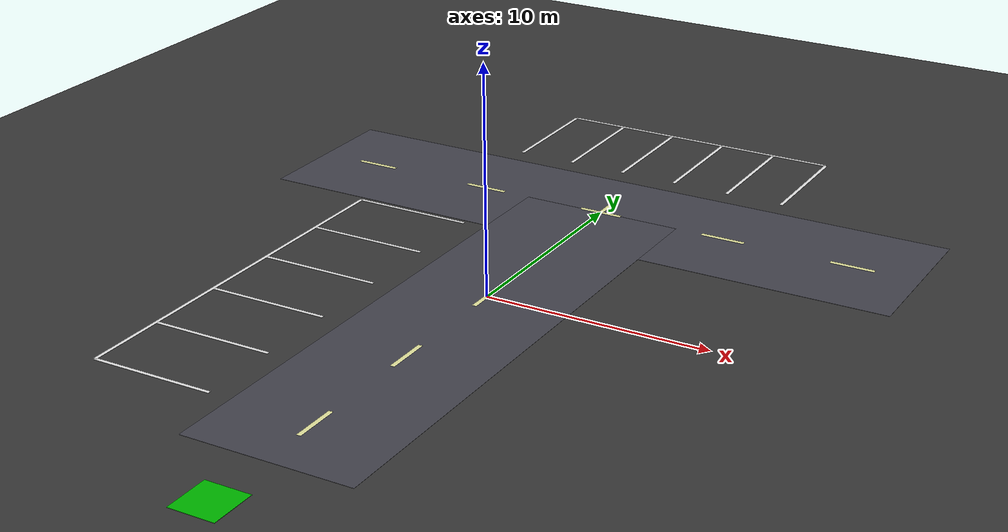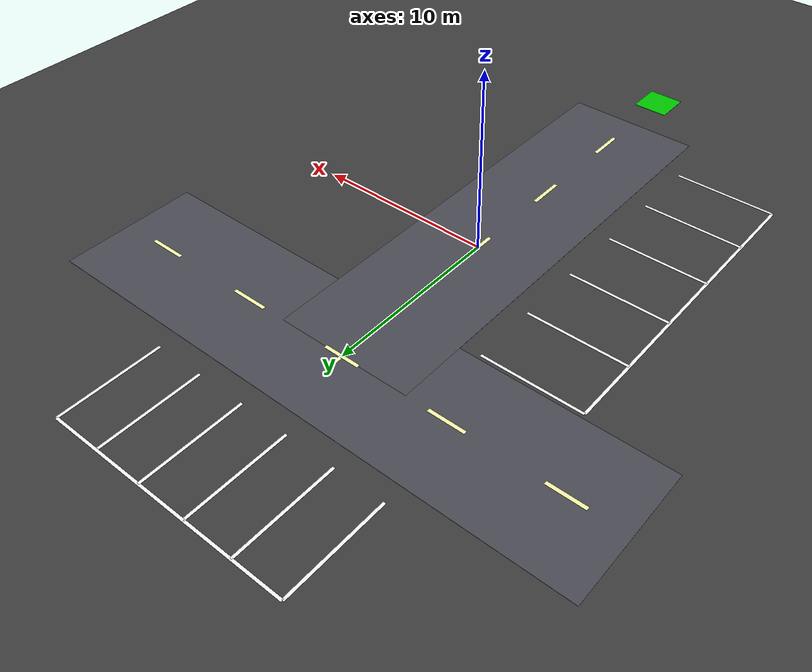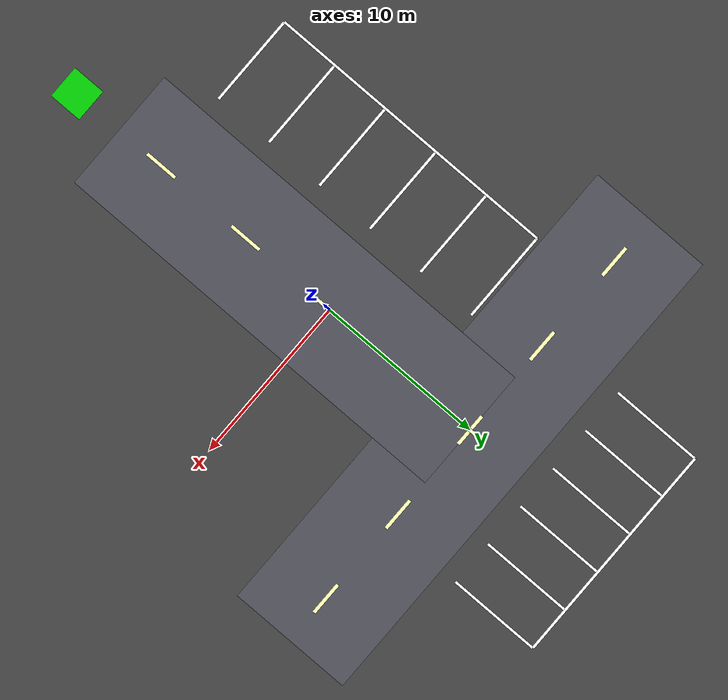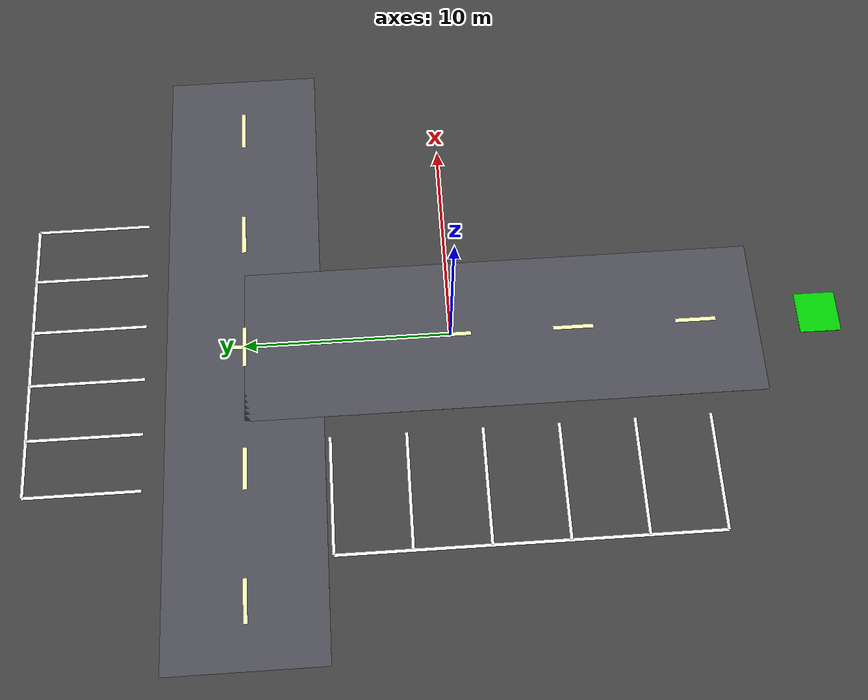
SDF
<?xml version="1.0" ?>
<sdf version="1.6">
  <world name="parking_lot_b">

    <!-- Sun / lighting -->
    <include>
      <uri>model://sun</uri>
    </include>

    <!-- Physics -->
    <physics type="ode">
      <real_time_update_rate>1000</real_time_update_rate>
      <max_step_size>0.001</max_step_size>
    </physics>

    <!-- Ground (asphalt) -->
    <model name="ground_plane">
      <static>true</static>
      <link name="link">
        <collision name="collision">
          <geometry>
            <plane>
              <normal>0 0 1</normal>
              <size>50 50</size>
            </plane>
          </geometry>
        </collision>
        <visual name="visual">
          <geometry>
            <plane>
              <normal>0 0 1</normal>
              <size>50 50</size>
            </plane>
          </geometry>
          <material>
            <ambient>0.25 0.25 0.25 1</ambient>
            <diffuse>0.25 0.25 0.25 1</diffuse>
          </material>
        </visual>
      </link>
    </model>

    <!-- Entrance marker (green square) near bottom of vertical road -->
    <model name="entrance_marker">
      <static>true</static>
      <link name="link">
        <visual name="entrance_visual">
          <pose>0 -18 0 0 0 0</pose>
          <geometry>
            <box><size>2 2 0.02</size></box>
          </geometry>
          <material>
            <diffuse>0 0.8 0 1</diffuse>
          </material>
        </visual>
      </link>
    </model>

    <!-- Vertical road (north–south) -->
    <model name="vertical_road">
      <static>true</static>
      <link name="link">
        <visual name="surface">
          <!-- Length 25 m (y), width 7.5 m (x) -->
          <pose>0 -2.5 0.001 0 0 0</pose>
          <geometry>
            <box><size>7.5 25 0.01</size></box>
          </geometry>
          <material>
            <ambient>0.20 0.20 0.22 1</ambient>
            <diffuse>0.30 0.30 0.34 1</diffuse>
          </material>
        </visual>

        <!-- Center dashed line on vertical road -->
        <visual name="v_dash1">
          <pose>0 -12 0.002 0 0 0</pose>
          <geometry><box><size>0.2 2 0.01</size></box></geometry>
          <material><diffuse>1 1 0.7 1</diffuse></material>
        </visual>
        <visual name="v_dash2">
          <pose>0 -6 0.002 0 0 0</pose>
          <geometry><box><size>0.2 2 0.01</size></box></geometry>
          <material><diffuse>1 1 0.7 1</diffuse></material>
        </visual>
        <visual name="v_dash3">
          <pose>0 0 0.002 0 0 0</pose>
          <geometry><box><size>0.2 2 0.01</size></box></geometry>
          <material><diffuse>1 1 0.7 1</diffuse></material>
        </visual>
        <visual name="v_dash4">
          <pose>0 6 0.002 0 0 0</pose>
          <geometry><box><size>0.2 2 0.01</size></box></geometry>
          <material><diffuse>1 1 0.7 1</diffuse></material>
        </visual>
        <visual name="v_dash5">
          <pose>0 10 0.002 0 0 0</pose>
          <geometry><box><size>0.2 2 0.01</size></box></geometry>
          <material><diffuse>1 1 0.7 1</diffuse></material>
        </visual>
      </link>
    </model>

    <!-- Horizontal road (east–west) at the top of the vertical road -->
    <model name="horizontal_road">
      <static>true</static>
      <link name="link">
        <visual name="surface">
          <!-- Length 30 m (x), width 7.5 m (y) -->
          <pose>0 10 0.001 0 0 0</pose>
          <geometry>
            <box><size>30 7.5 0.01</size></box>
          </geometry>
          <material>
            <ambient>0.20 0.20 0.22 1</ambient>
            <diffuse>0.30 0.30 0.34 1</diffuse>
          </material>
        </visual>

        <!-- Center dashed line on horizontal road -->
        <visual name="h_dash1">
          <pose>-12 10 0.002 0 0 0</pose>
          <geometry><box><size>2 0.2 0.01</size></box></geometry>
          <material><diffuse>1 1 0.7 1</diffuse></material>
        </visual>
        <visual name="h_dash2">
          <pose>-6 10 0.002 0 0 0</pose>
          <geometry><box><size>2 0.2 0.01</size></box></geometry>
          <material><diffuse>1 1 0.7 1</diffuse></material>
        </visual>
        <visual name="h_dash3">
          <pose>0 10 0.002 0 0 0</pose>
          <geometry><box><size>2 0.2 0.01</size></box></geometry>
          <material><diffuse>1 1 0.7 1</diffuse></material>
        </visual>
        <visual name="h_dash4">
          <pose>6 10 0.002 0 0 0</pose>
          <geometry><box><size>2 0.2 0.01</size></box></geometry>
          <material><diffuse>1 1 0.7 1</diffuse></material>
        </visual>
        <visual name="h_dash5">
          <pose>12 10 0.002 0 0 0</pose>
          <geometry><box><size>2 0.2 0.01</size></box></geometry>
          <material><diffuse>1 1 0.7 1</diffuse></material>
        </visual>
      </link>
    </model>

    <!-- Bays on horizontal leg (H1..H5) -->
    <model name="horizontal_bays">
      <static>true</static>
      <link name="link">

        <!-- Continuous back wall above all H bays -->
        <!-- 5 bays × 2.7 m = 13.5 m total -->
        <visual name="H_back_wall">
          <pose>0 20.25 0.002 0 0 0</pose>
          <geometry>
            <box><size>13.5 0.15 0.01</size></box>
          </geometry>
          <material><diffuse>1 1 1 1</diffuse></material>
        </visual>

        <!-- Shared vertical dividing lines (boundaries) -->
        <!-- boundaries at x = -6.75, -4.05, -1.35, 1.35, 4.05, 6.75 -->
        <visual name="H_left_bound">
          <pose>-6.75 17.5 0.002 0 0 0</pose>
          <geometry>
            <box><size>0.15 5.5 0.01</size></box>
          </geometry>
          <material><diffuse>1 1 1 1</diffuse></material>
        </visual>

        <visual name="H_div1">
          <pose>-4.05 17.5 0.002 0 0 0</pose>
          <geometry>
            <box><size>0.15 5.5 0.01</size></box>
          </geometry>
          <material><diffuse>1 1 1 1</diffuse></material>
        </visual>

        <visual name="H_div2">
          <pose>-1.35 17.5 0.002 0 0 0</pose>
          <geometry>
            <box><size>0.15 5.5 0.01</size></box>
          </geometry>
          <material><diffuse>1 1 1 1</diffuse></material>
        </visual>

        <visual name="H_div3">
          <pose>1.35 17.5 0.002 0 0 0</pose>
          <geometry>
            <box><size>0.15 5.5 0.01</size></box>
          </geometry>
          <material><diffuse>1 1 1 1</diffuse></material>
        </visual>

        <visual name="H_div4">
          <pose>4.05 17.5 0.002 0 0 0</pose>
          <geometry>
            <box><size>0.15 5.5 0.01</size></box>
          </geometry>
          <material><diffuse>1 1 1 1</diffuse></material>
        </visual>

        <visual name="H_right_bound">
          <pose>6.75 17.5 0.002 0 0 0</pose>
          <geometry>
            <box><size>0.15 5.5 0.01</size></box>
          </geometry>
          <material><diffuse>1 1 1 1</diffuse></material>
        </visual>

      </link>
    </model>

    <!-- Bays on vertical leg (V1..V5) -->
    <!-- pulled down so they don't overlap the junction -->
    <model name="vertical_bays">
      <static>true</static>
      <link name="link">

        <!-- Back wall to the left of all V bays -->
        <!-- Covers y from -12 to +6 -->
        <visual name="V_back_wall">
          <pose>-10.25 -3 0.002 0 0 0</pose>
          <geometry>
            <box><size>0.15 18 0.01</size></box>
          </geometry>
          <material><diffuse>1 1 1 1</diffuse></material>
        </visual>

        <!-- Horizontal boundaries at y = -12, -8.4, -4.8, -1.2, 2.4, 6.0 -->
        <!-- This gives 5 equal-height bays, top edge at y = 6 (below road edge ~6.25) -->
        <visual name="V_bound_bottom">
          <pose>-7.5 -12 0.002 0 0 0</pose>
          <geometry>
            <box><size>5.5 0.15 0.01</size></box>
          </geometry>
          <material><diffuse>1 1 1 1</diffuse></material>
        </visual>

        <visual name="V_div1">
          <pose>-7.5 -8.4 0.002 0 0 0</pose>
          <geometry>
            <box><size>5.5 0.15 0.01</size></box>
          </geometry>
          <material><diffuse>1 1 1 1</diffuse></material>
        </visual>

        <visual name="V_div2">
          <pose>-7.5 -4.8 0.002 0 0 0</pose>
          <geometry>
            <box><size>5.5 0.15 0.01</size></box>
          </geometry>
          <material><diffuse>1 1 1 1</diffuse></material>
        </visual>

        <visual name="V_div3">
          <pose>-7.5 -1.2 0.002 0 0 0</pose>
          <geometry>
            <box><size>5.5 0.15 0.01</size></box>
          </geometry>
          <material><diffuse>1 1 1 1</diffuse></material>
        </visual>

        <visual name="V_div4">
          <pose>-7.5 2.4 0.002 0 0 0</pose>
          <geometry>
            <box><size>5.5 0.15 0.01</size></box>
          </geometry>
          <material><diffuse>1 1 1 1</diffuse></material>
        </visual>

        <visual name="V_bound_top">
          <pose>-7.5 6.0 0.002 0 0 0</pose>
          <geometry>
            <box><size>5.5 0.15 0.01</size></box>
          </geometry>
          <material><diffuse>1 1 1 1</diffuse></material>
        </visual>

      </link>
    </model>

  </world>
</sdf>
